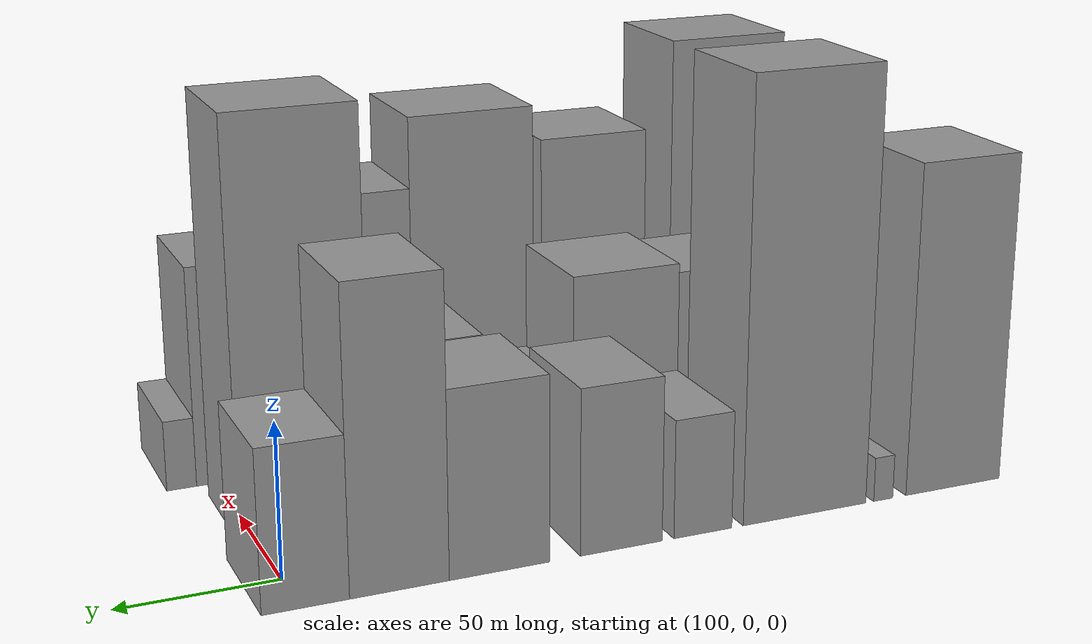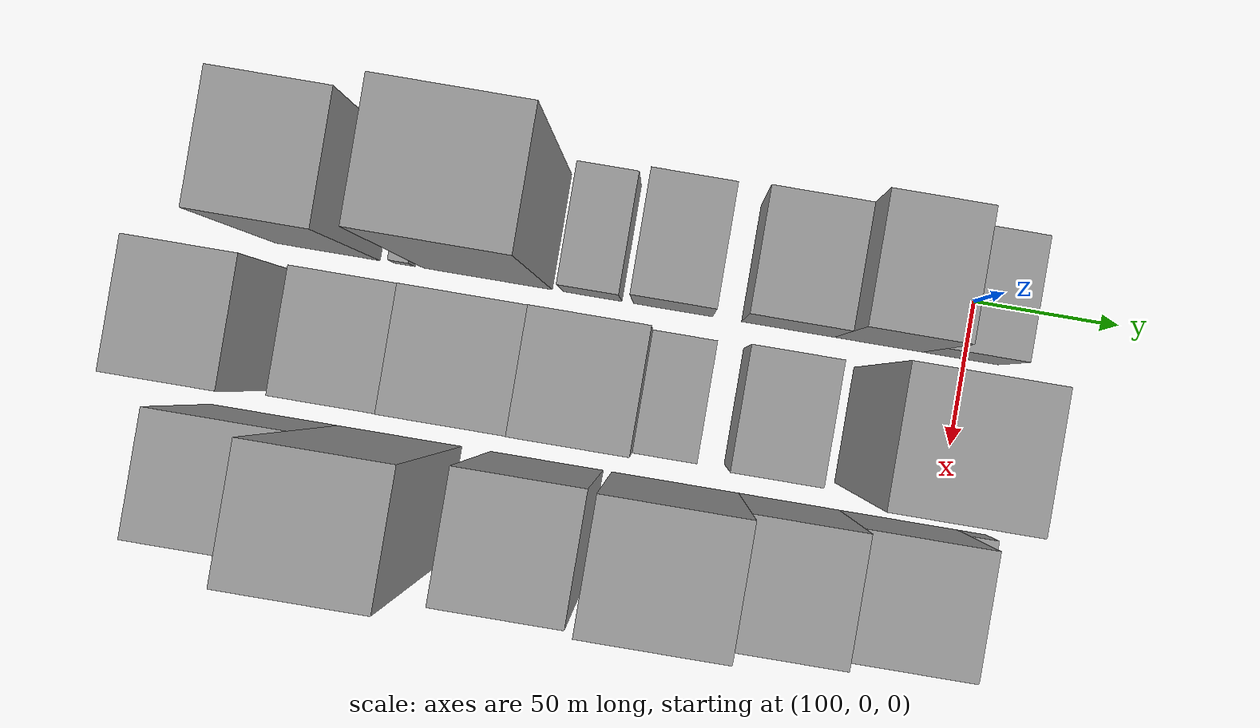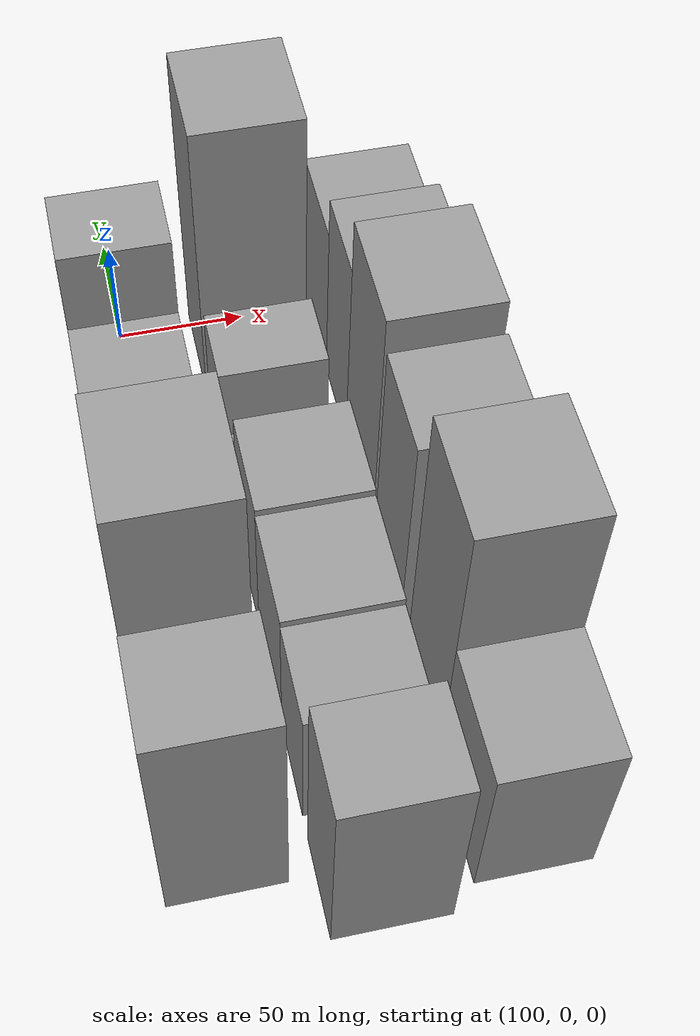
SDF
<sdf version="1.6">
 <world name="default">
  <model name="building_9">
   <static>1</static>
   <pose>100.0000 -220.7364 0 0.000000 0.000000 0.000000</pose>
   <link name="link">
    <pose>0 0 55.50 0 0 0</pose>
    <collision name="collision"><geometry><box><size>40.0000 36.1131 111.0000</size></box></geometry></collision>
    <visual name="visual">
     <cast_shadows>0</cast_shadows>
     <geometry><box><size>40.0000 36.1131 111.0000</size></box></geometry>
     <material>
      <script>
       <uri>model://grey_wall/materials/scripts</uri>
       <uri>model://grey_wall/materials/textures</uri>
       <name>vrc/grey_wall</name>
      </script>
     </material>
    </visual>
   </link>
  </model>
  <model name="building_10">
   <static>1</static>
   <pose>100.0000 -194.1090 0 0.000000 0.000000 0.000000</pose>
   <link name="link">
    <pose>0 0 7.50 0 0 0</pose>
    <collision name="collision"><geometry><box><size>40.0000 7.1417 15.0000</size></box></geometry></collision>
    <visual name="visual">
     <cast_shadows>0</cast_shadows>
     <geometry><box><size>40.0000 7.1417 15.0000</size></box></geometry>
     <material>
      <script>
       <uri>model://grey_wall/materials/scripts</uri>
       <uri>model://grey_wall/materials/textures</uri>
       <name>vrc/grey_wall</name>
      </script>
     </material>
    </visual>
   </link>
  </model>
  <model name="building_11">
   <static>1</static>
   <pose>100.0000 -165.2680 0 0.000000 0.000000 0.000000</pose>
   <link name="link">
    <pose>0 0 72.00 0 0 0</pose>
    <collision name="collision"><geometry><box><size>40.0000 44.5402 144.0000</size></box></geometry></collision>
    <visual name="visual">
     <cast_shadows>0</cast_shadows>
     <geometry><box><size>40.0000 44.5402 144.0000</size></box></geometry>
     <material>
      <script>
       <uri>model://grey_wall/materials/scripts</uri>
       <uri>model://grey_wall/materials/textures</uri>
       <name>vrc/grey_wall</name>
      </script>
     </material>
    </visual>
   </link>
  </model>
  <model name="building_12">
   <static>1</static>
   <pose>100.0000 -128.9240 0 0.000000 0.000000 0.000000</pose>
   <link name="link">
    <pose>0 0 19.50 0 0 0</pose>
    <collision name="collision"><geometry><box><size>40.0000 20.1479 39.0000</size></box></geometry></collision>
    <visual name="visual">
     <cast_shadows>0</cast_shadows>
     <geometry><box><size>40.0000 20.1479 39.0000</size></box></geometry>
     <material>
      <script>
       <uri>model://grey_wall/materials/scripts</uri>
       <uri>model://grey_wall/materials/textures</uri>
       <name>vrc/grey_wall</name>
      </script>
     </material>
    </visual>
   </link>
  </model>
  <model name="building_13">
   <static>1</static>
   <pose>100.0000 -101.1259 0 0.000000 0.000000 0.000000</pose>
   <link name="link">
    <pose>0 0 27.00 0 0 0</pose>
    <collision name="collision"><geometry><box><size>40.0000 27.4483 54.0000</size></box></geometry></collision>
    <visual name="visual">
     <cast_shadows>0</cast_shadows>
     <geometry><box><size>40.0000 27.4483 54.0000</size></box></geometry>
     <material>
      <script>
       <uri>model://grey_wall/materials/scripts</uri>
       <uri>model://grey_wall/materials/textures</uri>
       <name>vrc/grey_wall</name>
      </script>
     </material>
    </visual>
   </link>
  </model>
  <model name="building_14">
   <static>1</static>
   <pose>100.0000 -61.3096 0 0.000000 0.000000 0.000000</pose>
   <link name="link">
    <pose>0 0 30.00 0 0 0</pose>
    <collision name="collision"><geometry><box><size>40.0000 32.1842 60.0000</size></box></geometry></collision>
    <visual name="visual">
     <cast_shadows>0</cast_shadows>
     <geometry><box><size>40.0000 32.1842 60.0000</size></box></geometry>
     <material>
      <script>
       <uri>model://grey_wall/materials/scripts</uri>
       <uri>model://grey_wall/materials/textures</uri>
       <name>vrc/grey_wall</name>
      </script>
     </material>
    </visual>
   </link>
  </model>
  <model name="building_15">
   <static>1</static>
   <pose>100.0000 -29.9201 0 0.000000 0.000000 0.000000</pose>
   <link name="link">
    <pose>0 0 48.00 0 0 0</pose>
    <collision name="collision"><geometry><box><size>40.0000 30.5947 96.0000</size></box></geometry></collision>
    <visual name="visual">
     <cast_shadows>0</cast_shadows>
     <geometry><box><size>40.0000 30.5947 96.0000</size></box></geometry>
     <material>
      <script>
       <uri>model://grey_wall/materials/scripts</uri>
       <uri>model://grey_wall/materials/textures</uri>
       <name>vrc/grey_wall</name>
      </script>
     </material>
    </visual>
   </link>
  </model>
  <model name="building_16">
   <static>1</static>
   <pose>100.0000 -1.5461 0 0.000000 0.000000 0.000000</pose>
   <link name="link">
    <pose>0 0 25.50 0 0 0</pose>
    <collision name="collision"><geometry><box><size>40.0000 26.1533 51.0000</size></box></geometry></collision>
    <visual name="visual">
     <cast_shadows>0</cast_shadows>
     <geometry><box><size>40.0000 26.1533 51.0000</size></box></geometry>
     <material>
      <script>
       <uri>model://grey_wall/materials/scripts</uri>
       <uri>model://grey_wall/materials/textures</uri>
       <name>vrc/grey_wall</name>
      </script>
     </material>
    </visual>
   </link>
  </model>
  <model name="building_40">
   <static>1</static>
   <pose>149.0000 -242.8486 0 0.000000 0.000000 0.000000</pose>
   <link name="link">
    <pose>0 0 46.50 0 0 0</pose>
    <collision name="collision"><geometry><box><size>40.0000 34.3028 93.0000</size></box></geometry></collision>
    <visual name="visual">
     <cast_shadows>0</cast_shadows>
     <geometry><box><size>40.0000 34.3028 93.0000</size></box></geometry>
     <material>
      <script>
       <uri>model://grey_wall/materials/scripts</uri>
       <uri>model://grey_wall/materials/textures</uri>
       <name>vrc/grey_wall</name>
      </script>
     </material>
    </visual>
   </link>
  </model>
  <model name="building_41">
   <static>1</static>
   <pose>149.0000 -200.7649 0 0.000000 0.000000 0.000000</pose>
   <link name="link">
    <pose>0 0 33.00 0 0 0</pose>
    <collision name="collision"><geometry><box><size>40.0000 33.8648 66.0000</size></box></geometry></collision>
    <visual name="visual">
     <cast_shadows>0</cast_shadows>
     <geometry><box><size>40.0000 33.8648 66.0000</size></box></geometry>
     <material>
      <script>
       <uri>model://grey_wall/materials/scripts</uri>
       <uri>model://grey_wall/materials/textures</uri>
       <name>vrc/grey_wall</name>
      </script>
     </material>
    </visual>
   </link>
  </model>
  <model name="building_42">
   <static>1</static>
   <pose>149.0000 -163.7978 0 0.000000 0.000000 0.000000</pose>
   <link name="link">
    <pose>0 0 34.50 0 0 0</pose>
    <collision name="collision"><geometry><box><size>40.0000 40.0694 69.0000</size></box></geometry></collision>
    <visual name="visual">
     <cast_shadows>0</cast_shadows>
     <geometry><box><size>40.0000 40.0694 69.0000</size></box></geometry>
     <material>
      <script>
       <uri>model://grey_wall/materials/scripts</uri>
       <uri>model://grey_wall/materials/textures</uri>
       <name>vrc/grey_wall</name>
      </script>
     </material>
    </visual>
   </link>
  </model>
  <model name="building_43">
   <static>1</static>
   <pose>149.0000 -125.0064 0 0.000000 0.000000 0.000000</pose>
   <link name="link">
    <pose>0 0 36.00 0 0 0</pose>
    <collision name="collision"><geometry><box><size>40.0000 37.5133 72.0000</size></box></geometry></collision>
    <visual name="visual">
     <cast_shadows>0</cast_shadows>
     <geometry><box><size>40.0000 37.5133 72.0000</size></box></geometry>
     <material>
      <script>
       <uri>model://grey_wall/materials/scripts</uri>
       <uri>model://grey_wall/materials/textures</uri>
       <name>vrc/grey_wall</name>
      </script>
     </material>
    </visual>
   </link>
  </model>
  <model name="building_44">
   <static>1</static>
   <pose>149.0000 -95.7182 0 0.000000 0.000000 0.000000</pose>
   <link name="link">
    <pose>0 0 18.00 0 0 0</pose>
    <collision name="collision"><geometry><box><size>40.0000 21.0632 36.0000</size></box></geometry></collision>
    <visual name="visual">
     <cast_shadows>0</cast_shadows>
     <geometry><box><size>40.0000 21.0632 36.0000</size></box></geometry>
     <material>
      <script>
       <uri>model://grey_wall/materials/scripts</uri>
       <uri>model://grey_wall/materials/textures</uri>
       <name>vrc/grey_wall</name>
      </script>
     </material>
    </visual>
   </link>
  </model>
  <model name="building_45">
   <static>1</static>
   <pose>149.0000 -60.5507 0 0.000000 0.000000 0.000000</pose>
   <link name="link">
    <pose>0 0 28.50 0 0 0</pose>
    <collision name="collision"><geometry><box><size>40.0000 29.2717 57.0000</size></box></geometry></collision>
    <visual name="visual">
     <cast_shadows>0</cast_shadows>
     <geometry><box><size>40.0000 29.2717 57.0000</size></box></geometry>
     <material>
      <script>
       <uri>model://grey_wall/materials/scripts</uri>
       <uri>model://grey_wall/materials/textures</uri>
       <name>vrc/grey_wall</name>
      </script>
     </material>
    </visual>
   </link>
  </model>
  <model name="building_46">
   <static>1</static>
   <pose>149.0000 -15.8143 0 0.000000 0.000000 0.000000</pose>
   <link name="link">
    <pose>0 0 67.50 0 0 0</pose>
    <collision name="collision"><geometry><box><size>40.0000 42.2011 135.0000</size></box></geometry></collision>
    <visual name="visual">
     <cast_shadows>0</cast_shadows>
     <geometry><box><size>40.0000 42.2011 135.0000</size></box></geometry>
     <material>
      <script>
       <uri>model://grey_wall/materials/scripts</uri>
       <uri>model://grey_wall/materials/textures</uri>
       <name>vrc/grey_wall</name>
      </script>
     </material>
    </visual>
   </link>
  </model>
  <model name="building_69">
   <static>1</static>
   <pose>198.0000 -229.6370 0 0.000000 0.000000 0.000000</pose>
   <link name="link">
    <pose>0 0 37.50 0 0 0</pose>
    <collision name="collision"><geometry><box><size>40.0000 43.9727 75.0000</size></box></geometry></collision>
    <visual name="visual">
     <cast_shadows>0</cast_shadows>
     <geometry><box><size>40.0000 43.9727 75.0000</size></box></geometry>
     <material>
      <script>
       <uri>model://grey_wall/materials/scripts</uri>
       <uri>model://grey_wall/materials/textures</uri>
       <name>vrc/grey_wall</name>
      </script>
     </material>
    </visual>
   </link>
  </model>
  <model name="building_70">
   <static>1</static>
   <pose>198.0000 -186.1103 0 0.000000 0.000000 0.000000</pose>
   <link name="link">
    <pose>0 0 67.50 0 0 0</pose>
    <collision name="collision"><geometry><box><size>40.0000 43.0807 135.0000</size></box></geometry></collision>
    <visual name="visual">
     <cast_shadows>0</cast_shadows>
     <geometry><box><size>40.0000 43.0807 135.0000</size></box></geometry>
     <material>
      <script>
       <uri>model://grey_wall/materials/scripts</uri>
       <uri>model://grey_wall/materials/textures</uri>
       <name>vrc/grey_wall</name>
      </script>
     </material>
    </visual>
   </link>
  </model>
  <model name="building_71">
   <static>1</static>
   <pose>198.0000 -135.0684 0 0.000000 0.000000 0.000000</pose>
   <link name="link">
    <pose>0 0 52.50 0 0 0</pose>
    <collision name="collision"><geometry><box><size>40.0000 39.0031 105.0000</size></box></geometry></collision>
    <visual name="visual">
     <cast_shadows>0</cast_shadows>
     <geometry><box><size>40.0000 39.0031 105.0000</size></box></geometry>
     <material>
      <script>
       <uri>model://grey_wall/materials/scripts</uri>
       <uri>model://grey_wall/materials/textures</uri>
       <name>vrc/grey_wall</name>
      </script>
     </material>
    </visual>
   </link>
  </model>
  <model name="building_72">
   <static>1</static>
   <pose>198.0000 -90.5936 0 0.000000 0.000000 0.000000</pose>
   <link name="link">
    <pose>0 0 58.50 0 0 0</pose>
    <collision name="collision"><geometry><box><size>40.0000 43.9464 117.0000</size></box></geometry></collision>
    <visual name="visual">
     <cast_shadows>0</cast_shadows>
     <geometry><box><size>40.0000 43.9464 117.0000</size></box></geometry>
     <material>
      <script>
       <uri>model://grey_wall/materials/scripts</uri>
       <uri>model://grey_wall/materials/textures</uri>
       <name>vrc/grey_wall</name>
      </script>
     </material>
    </visual>
   </link>
  </model>
  <model name="building_73">
   <static>1</static>
   <pose>198.0000 -51.1951 0 0.000000 0.000000 0.000000</pose>
   <link name="link">
    <pose>0 0 46.50 0 0 0</pose>
    <collision name="collision"><geometry><box><size>40.0000 34.8508 93.0000</size></box></geometry></collision>
    <visual name="visual">
     <cast_shadows>0</cast_shadows>
     <geometry><box><size>40.0000 34.8508 93.0000</size></box></geometry>
     <material>
      <script>
       <uri>model://grey_wall/materials/scripts</uri>
       <uri>model://grey_wall/materials/textures</uri>
       <name>vrc/grey_wall</name>
      </script>
     </material>
    </visual>
   </link>
  </model>
  <model name="building_74">
   <static>1</static>
   <pose>198.0000 -13.3068 0 0.000000 0.000000 0.000000</pose>
   <link name="link">
    <pose>0 0 37.50 0 0 0</pose>
    <collision name="collision"><geometry><box><size>40.0000 40.9258 75.0000</size></box></geometry></collision>
    <visual name="visual">
     <cast_shadows>0</cast_shadows>
     <geometry><box><size>40.0000 40.9258 75.0000</size></box></geometry>
     <material>
      <script>
       <uri>model://grey_wall/materials/scripts</uri>
       <uri>model://grey_wall/materials/textures</uri>
       <name>vrc/grey_wall</name>
      </script>
     </material>
    </visual>
   </link>
  </model>
  <model name="building_75">
   <static>1</static>
   <pose>198.0000 12.0767 0 0.000000 0.000000 0.000000</pose>
   <link name="link">
    <pose>0 0 12.00 0 0 0</pose>
    <collision name="collision"><geometry><box><size>40.0000 9.8411 24.0000</size></box></geometry></collision>
    <visual name="visual">
     <cast_shadows>0</cast_shadows>
     <geometry><box><size>40.0000 9.8411 24.0000</size></box></geometry>
     <material>
      <script>
       <uri>model://grey_wall/materials/scripts</uri>
       <uri>model://grey_wall/materials/textures</uri>
       <name>vrc/grey_wall</name>
      </script>
     </material>
    </visual>
   </link>
  </model>
 </world>
</sdf>
